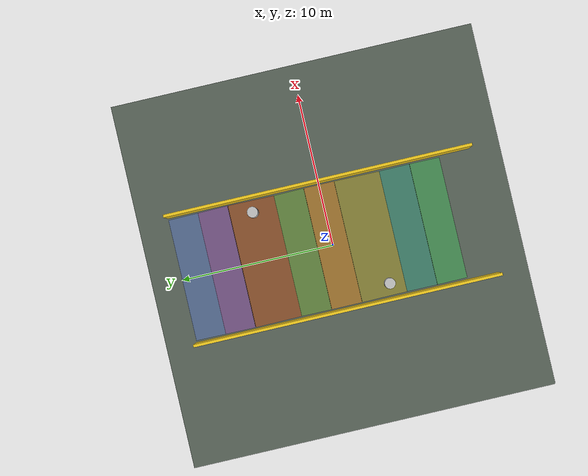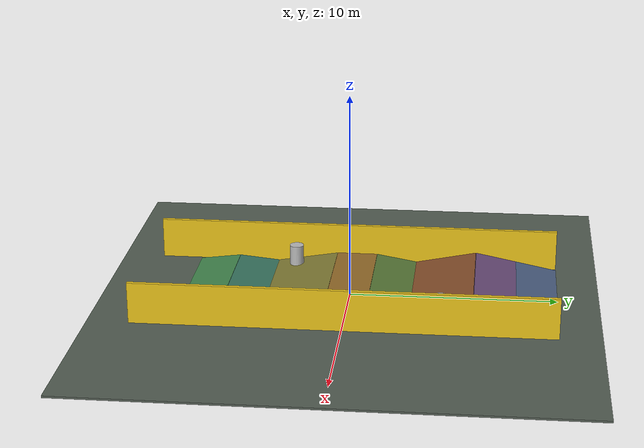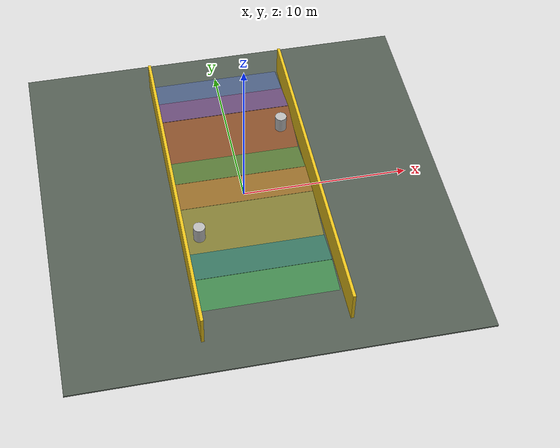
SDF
<?xml version="1.0"?>
<sdf version="1.9">
  <world name="rough_terrain_demo">
    <plugin filename="gz-sim-physics-system" name="gz::sim::systems::Physics"/>
    <plugin filename="gz-sim-user-commands-system" name="gz::sim::systems::UserCommands"/>
    <plugin filename="gz-sim-scene-broadcaster-system" name="gz::sim::systems::SceneBroadcaster"/>
    <plugin filename="gz-sim-sensors-system" name="gz::sim::systems::Sensors">
      <render_engine>ogre2</render_engine>
    </plugin>
    <gravity>0 0 -9.81</gravity>
    <physics name="1ms" type="ignored">
      <max_step_size>0.002</max_step_size><real_time_factor>1.0</real_time_factor>
    </physics>
    <light name="sun" type="directional">
      <cast_shadows>true</cast_shadows><pose>0 0 12 0 0 0</pose>
      <diffuse>0.85 0.85 0.85 1</diffuse><specular>0.2 0.2 0.2 1</specular>
      <direction>-0.4 0.2 -0.9</direction>
    </light>

    <model name="ground"><static>true</static><link name="link"><pose>0 0 -0.05 0 0 0</pose>
      <collision name="collision"><geometry><box><size>24 24 0.1</size></box></geometry></collision>
      <visual name="visual"><geometry><box><size>24 24 0.1</size></box></geometry>
        <material><ambient>0.32 0.36 0.32 1</ambient><diffuse>0.32 0.36 0.32 1</diffuse></material></visual>
    </link></model>

    <model name="rise_1"><static>true</static><pose>0 -7 0.0655 0.124355 0 0</pose><link name="link">
      <collision name="collision"><geometry><box><size>8 2.0156 0.12</size></box></geometry></collision>
      <visual name="visual"><geometry><box><size>8 2.0156 0.12</size></box></geometry>
        <material><ambient>0.25 0.52 0.30 1</ambient><diffuse>0.25 0.52 0.30 1</diffuse></material></visual>
    </link></model>
    <model name="dip_1"><static>true</static><pose>0 -5 0.0903 -0.099669 0 0</pose><link name="link">
      <collision name="collision"><geometry><box><size>8 2.0100 0.12</size></box></geometry></collision>
      <visual name="visual"><geometry><box><size>8 2.0100 0.12</size></box></geometry>
        <material><ambient>0.22 0.46 0.38 1</ambient><diffuse>0.22 0.46 0.38 1</diffuse></material></visual>
    </link></model>
    <model name="rise_2"><static>true</static><pose>0 -2.5 0.2408 0.165149 0 0</pose><link name="link">
      <collision name="collision"><geometry><box><size>8 3.0414 0.12</size></box></geometry></collision>
      <visual name="visual"><geometry><box><size>8 3.0414 0.12</size></box></geometry>
        <material><ambient>0.50 0.48 0.20 1</ambient><diffuse>0.50 0.48 0.20 1</diffuse></material></visual>
    </link></model>
    <model name="middle_crest"><static>true</static><pose>0 0 0.49 0 0 0</pose><link name="link">
      <collision name="collision"><geometry><box><size>8 2.0 0.12</size></box></geometry></collision>
      <visual name="visual"><geometry><box><size>8 2.0 0.12</size></box></geometry>
        <material><ambient>0.58 0.42 0.16 1</ambient><diffuse>0.58 0.42 0.16 1</diffuse></material></visual>
    </link></model>
    <model name="dip_2"><static>true</static><pose>0 2 0.3159 -0.173246 0 0</pose><link name="link">
      <collision name="collision"><geometry><box><size>8 2.0304 0.12</size></box></geometry></collision>
      <visual name="visual"><geometry><box><size>8 2.0304 0.12</size></box></geometry>
        <material><ambient>0.35 0.48 0.22 1</ambient><diffuse>0.35 0.48 0.22 1</diffuse></material></visual>
    </link></model>
    <model name="rise_3"><static>true</static><pose>0 4.5 0.4412 0.197396 0 0</pose><link name="link">
      <collision name="collision"><geometry><box><size>8 3.0594 0.12</size></box></geometry></collision>
      <visual name="visual"><geometry><box><size>8 3.0594 0.12</size></box></geometry>
        <material><ambient>0.52 0.30 0.16 1</ambient><diffuse>0.52 0.30 0.16 1</diffuse></material></visual>
    </link></model>
    <model name="dip_3"><static>true</static><pose>0 7 0.5412 -0.197396 0 0</pose><link name="link">
      <collision name="collision"><geometry><box><size>8 2.0396 0.12</size></box></geometry></collision>
      <visual name="visual"><geometry><box><size>8 2.0396 0.12</size></box></geometry>
        <material><ambient>0.42 0.30 0.48 1</ambient><diffuse>0.42 0.30 0.48 1</diffuse></material></visual>
    </link></model>
    <model name="exit_slope"><static>true</static><pose>0 9 0.1412 -0.197396 0 0</pose><link name="link">
      <collision name="collision"><geometry><box><size>8 2.0396 0.12</size></box></geometry></collision>
      <visual name="visual"><geometry><box><size>8 2.0396 0.12</size></box></geometry>
        <material><ambient>0.30 0.38 0.52 1</ambient><diffuse>0.30 0.38 0.52 1</diffuse></material></visual>
    </link></model>

    <!-- Tall side boundaries keep local detours on the traversable surface. -->
    <model name="west_guard"><static>true</static><pose>-4.2 0 1.0 0 0 0</pose><link name="link">
      <collision name="collision"><geometry><box><size>0.18 20 2.0</size></box></geometry></collision>
      <visual name="visual"><geometry><box><size>0.18 20 2.0</size></box></geometry>
        <material><ambient>0.9 0.75 0.1 1</ambient><diffuse>0.9 0.75 0.1 1</diffuse></material></visual>
    </link></model>
    <model name="east_guard"><static>true</static><pose>4.2 0 1.0 0 0 0</pose><link name="link">
      <collision name="collision"><geometry><box><size>0.18 20 2.0</size></box></geometry></collision>
      <visual name="visual"><geometry><box><size>0.18 20 2.0</size></box></geometry>
        <material><ambient>0.9 0.75 0.1 1</ambient><diffuse>0.9 0.75 0.1 1</diffuse></material></visual>
    </link></model>

    <!-- Shoulder obstacles exercise perception without blocking either lane. -->
    <model name="shoulder_column_left"><static>true</static><pose>-3.2 -3 0.717 0 0 0</pose><link name="link">
      <collision name="collision"><geometry><cylinder><radius>0.35</radius><length>1.0</length></cylinder></geometry></collision>
      <visual name="visual"><geometry><cylinder><radius>0.35</radius><length>1.0</length></cylinder></geometry></visual>
    </link></model>
    <model name="shoulder_column_right"><static>true</static><pose>3.2 4.5 1.0 0 0 0</pose><link name="link">
      <collision name="collision"><geometry><cylinder><radius>0.35</radius><length>1.0</length></cylinder></geometry></collision>
      <visual name="visual"><geometry><cylinder><radius>0.35</radius><length>1.0</length></cylinder></geometry></visual>
    </link></model>
  </world>
</sdf>
